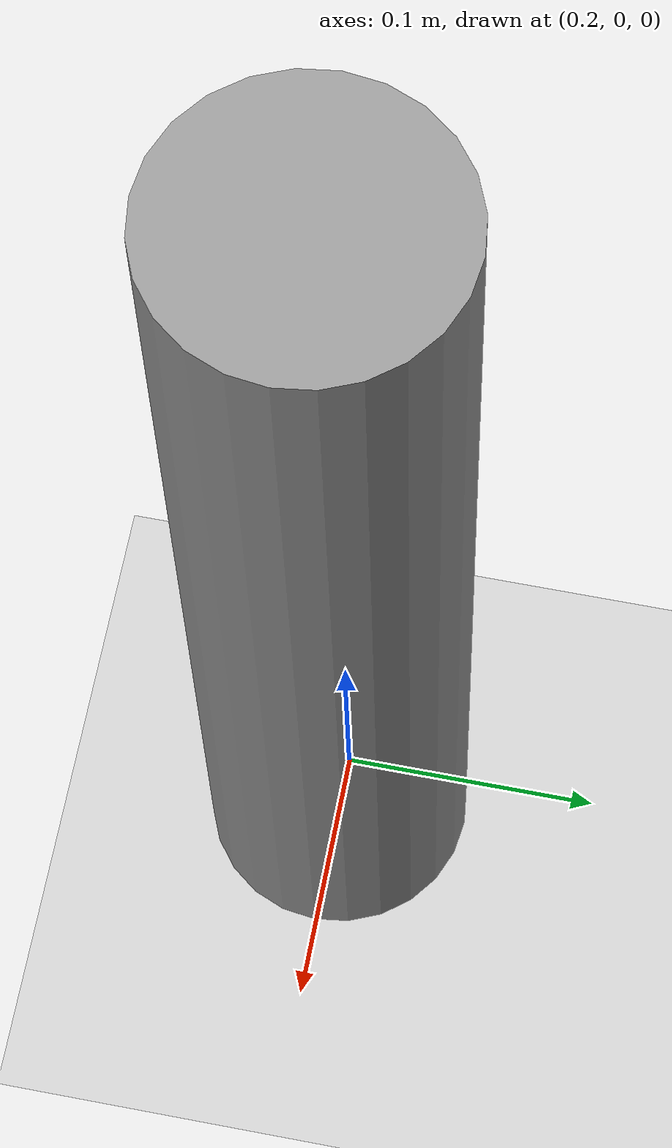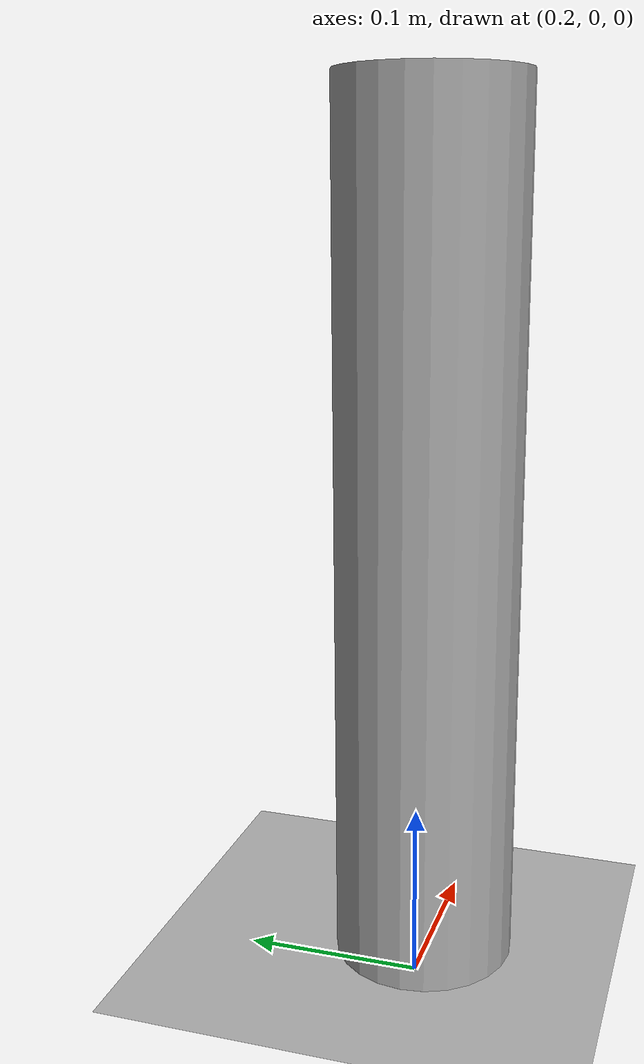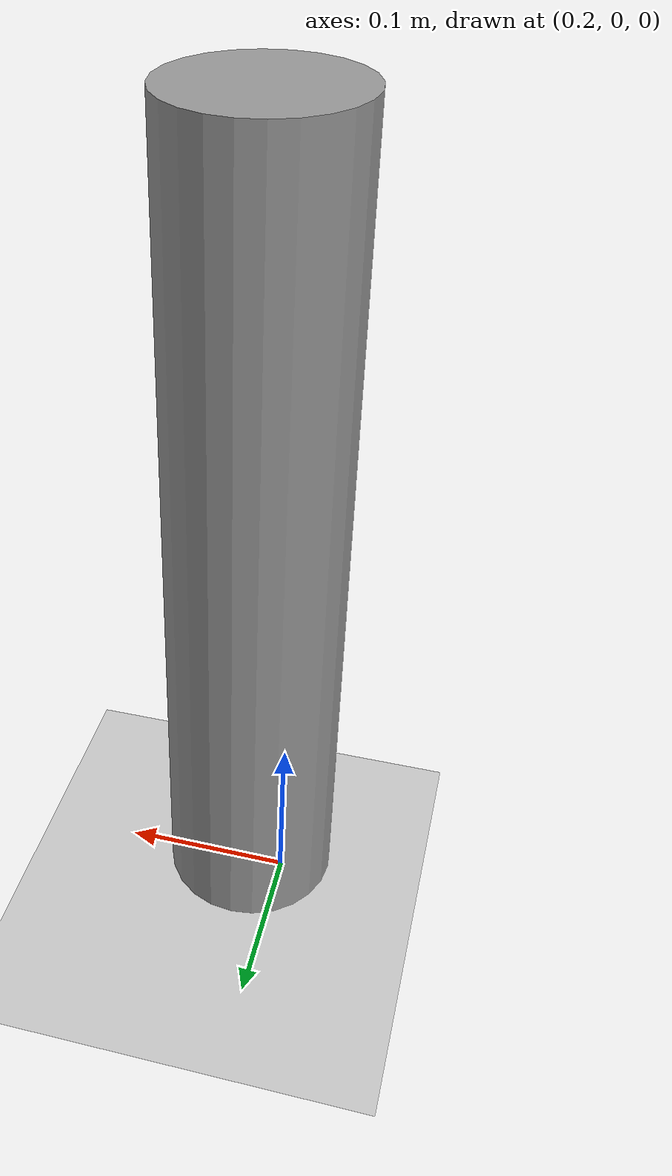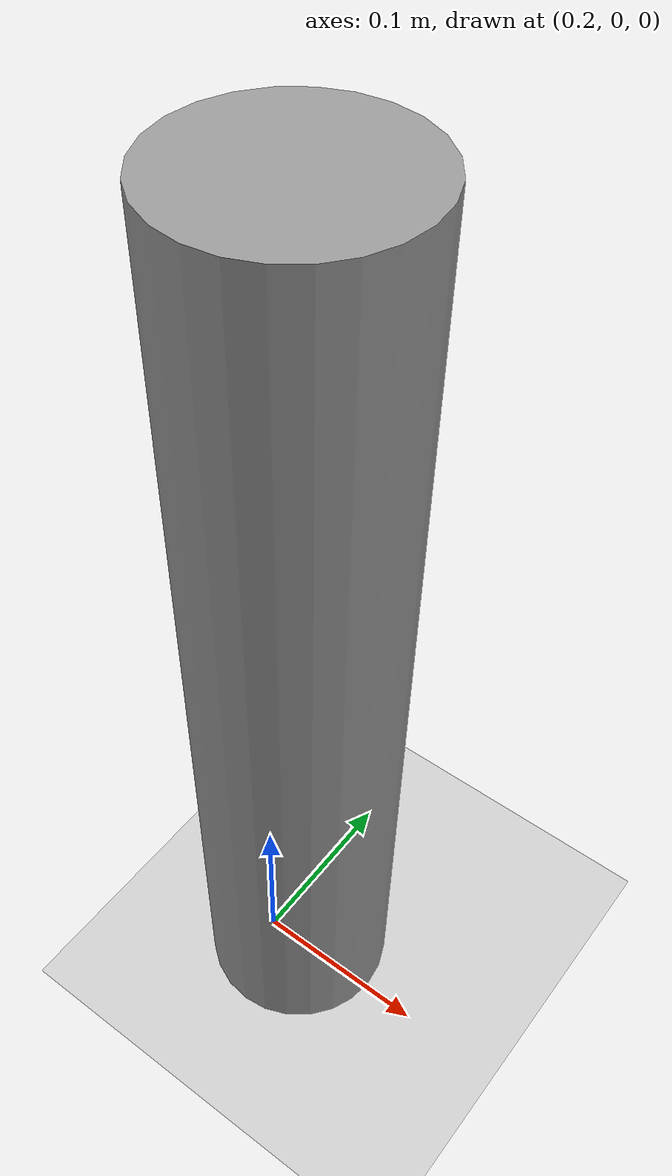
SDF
<sdf version="1.4">
  <world name="default">
    <!-- A global light source -->
    <include>
      <uri>model://sun</uri>
    </include>

    <!-- A ground plane -->
    <include>
      <uri>model://ground_plane</uri>
    </include>

    <physics type="ode">
      <real_time_update_rate>1000.0</real_time_update_rate>
      <max_step_size>0.001</max_step_size>
      <real_time_factor>1</real_time_factor>
      <ode>
        <solver>
          <type>quick</type>
          <iters>150</iters>
          <precon_iters>0</precon_iters>
          <sor>1.400000</sor>
          <use_dynamic_moi_rescaling>1</use_dynamic_moi_rescaling>
        </solver>
        <constraints>
          <cfm>0.00001</cfm>
          <erp>0.2</erp>
          <contact_max_correcting_vel>2000.000000</contact_max_correcting_vel>
          <contact_surface_layer>0.01000</contact_surface_layer>
        </constraints>
      </ode>
    </physics>

    <!-- Load world -->
    <include>
      <pose>0.22 0 0.25 0 0 0</pose>
      <uri>model://obstacle_1</uri>
    </include>

  <scene>
    <ambient>0.4 0.4 0.4 1</ambient>
    <background>0.7 0.7 0.7 1</background>
    <shadows>true</shadows>
  </scene>
  </world>

</sdf>

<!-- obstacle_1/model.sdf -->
<sdf version='1.6'>
  <model name='obstacle_1'>
    <link name='link'>
      <pose frame=''>0 0 0 0 -0 0</pose>
      <inertial>
        <mass>1</mass>
        <inertia>
          <ixx>0.145833</ixx>
          <ixy>0</ixy>
          <ixz>0</ixz>
          <iyy>0.145833</iyy>
          <iyz>0</iyz>
          <izz>0.125</izz>
        </inertia>
        <pose frame=''>0 0 0 0 -0 0</pose>
      </inertial>
      <self_collide>0</self_collide>
      <kinematic>0</kinematic>
      <gravity>1</gravity>
      <visual name='visual'>
        <geometry>
          <cylinder>
            <radius>0.0511306</radius>
            <length>0.486267</length>
          </cylinder>
        </geometry>
        <material>
          <script>
            <name>Gazebo/Grey</name>
            <uri>file://media/materials/scripts/gazebo.material</uri>
          </script>
          <ambient>0.3 0.3 0.3 1</ambient>
          <diffuse>0.7 0.7 0.7 1</diffuse>
          <specular>0.01 0.01 0.01 1</specular>
          <emissive>0 0 0 1</emissive>
          <shader type='vertex'>
            <normal_map>__default__</normal_map>
          </shader>
        </material>
        <pose frame=''>0 0 0 0 -0 0</pose>
        <cast_shadows>1</cast_shadows>
        <transparency>0</transparency>
      </visual>
      <collision name='collision'>
        <laser_retro>0</laser_retro>
        <max_contacts>10</max_contacts>
        <pose frame=''>0 0 0 0 -0 0</pose>
        <geometry>
          <cylinder>
            <radius>0.051131</radius>
            <length>0.486267</length>
          </cylinder>
        </geometry>
        <surface>
          <friction>
            <ode>
              <mu>1</mu>
              <mu2>1</mu2>
              <fdir1>0 0 0</fdir1>
              <slip1>0</slip1>
              <slip2>0</slip2>
            </ode>
            <torsional>
              <coefficient>1</coefficient>
              <patch_radius>0</patch_radius>
              <surface_radius>0</surface_radius>
              <use_patch_radius>1</use_patch_radius>
              <ode>
                <slip>0</slip>
              </ode>
            </torsional>
          </friction>
          <bounce>
            <restitution_coefficient>0</restitution_coefficient>
            <threshold>1e+06</threshold>
          </bounce>
          <contact>
            <collide_without_contact>0</collide_without_contact>
            <collide_without_contact_bitmask>1</collide_without_contact_bitmask>
            <collide_bitmask>1</collide_bitmask>
            <ode>
              <soft_cfm>0</soft_cfm>
              <soft_erp>0.2</soft_erp>
              <kp>1e+13</kp>
              <kd>1</kd>
              <max_vel>0.01</max_vel>
              <min_depth>0</min_depth>
            </ode>
            <bullet>
              <split_impulse>1</split_impulse>
              <split_impulse_penetration_threshold>-0.01</split_impulse_penetration_threshold>
              <soft_cfm>0</soft_cfm>
              <soft_erp>0.2</soft_erp>
              <kp>1e+13</kp>
              <kd>1</kd>
            </bullet>
          </contact>
        </surface>
      </collision>
    </link>
    <static>1</static>
    <allow_auto_disable>1</allow_auto_disable>
  </model>
</sdf>
